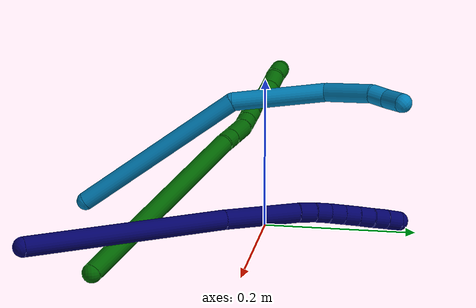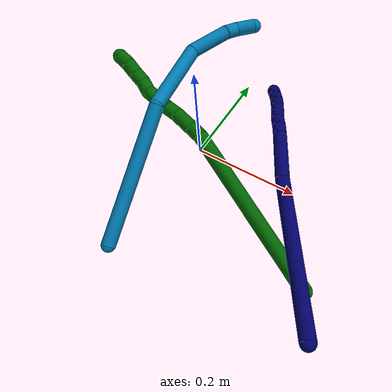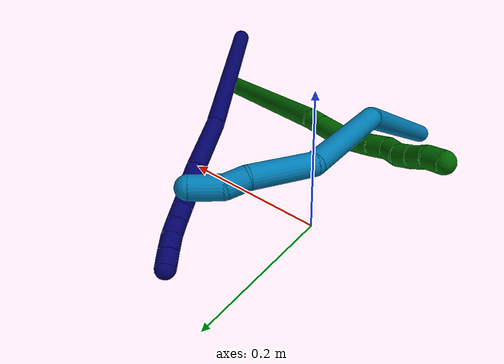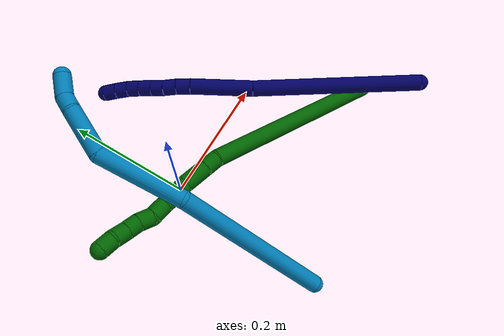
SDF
<sdf version="1.7">
 <world name="default">
  <model name="6">
   <static>0</static>
   <link name="6">
    <collision name="collision-cylinder-e_1_1_4">
     <pose>0.009635 0.116981 -0.088698 -2.21954 0.065535 -0.13179</pose>
     <geometry><cylinder><radius>0.0125</radius><length>0.294242</length></cylinder></geometry>
     <surface>
      <friction><ode><mu>1.16</mu><mu2>1.16</mu2><slip1>0</slip1><slip2>0</slip2></ode></friction>
      <contact><ode><kp>1e+06</kp><kd>1</kd><max_vel>0</max_vel><min_depth>0.001</min_depth></ode></contact>
     </surface>
    </collision>
    <visual name="visual-cylinder-e_1_1_4">
     <pose>0.009635 0.116981 -0.088698 -2.21954 0.065535 -0.13179</pose>
     <geometry><cylinder><radius>0.0125</radius><length>0.294242</length></cylinder></geometry>
     <material><ambient>0 0.392157 0.003922 1</ambient></material>
    </visual>
    <collision name="collision-cylinder-e_2_4_5">
     <pose>0.017474 0.2431 -0.182667 -2.09399 -0.168541 0.29042</pose>
     <geometry><cylinder><radius>0.0125</radius><length>0.021404</length></cylinder></geometry>
     <surface>
      <friction><ode><mu>1.16</mu><mu2>1.16</mu2><slip1>0</slip1><slip2>0</slip2></ode></friction>
      <contact><ode><kp>1e+06</kp><kd>1</kd><max_vel>0</max_vel><min_depth>0.001</min_depth></ode></contact>
     </surface>
    </collision>
    <visual name="visual-cylinder-e_2_4_5">
     <pose>0.017474 0.2431 -0.182667 -2.09399 -0.168541 0.29042</pose>
     <geometry><cylinder><radius>0.0125</radius><length>0.021404</length></cylinder></geometry>
     <material><ambient>0 0.392157 0.003922 1</ambient></material>
    </visual>
    <collision name="collision-cylinder-e_3_5_6">
     <pose>0.012734 0.268133 -0.197019 -2.08987 -0.159535 0.273746</pose>
     <geometry><cylinder><radius>0.0125</radius><length>0.037081</length></cylinder></geometry>
     <surface>
      <friction><ode><mu>1.16</mu><mu2>1.16</mu2><slip1>0</slip1><slip2>0</slip2></ode></friction>
      <contact><ode><kp>1e+06</kp><kd>1</kd><max_vel>0</max_vel><min_depth>0.001</min_depth></ode></contact>
     </surface>
    </collision>
    <visual name="visual-cylinder-e_3_5_6">
     <pose>0.012734 0.268133 -0.197019 -2.08987 -0.159535 0.273746</pose>
     <geometry><cylinder><radius>0.0125</radius><length>0.037081</length></cylinder></geometry>
     <material><ambient>0 0.392157 0.003922 1</ambient></material>
    </visual>
    <collision name="collision-cylinder-e_4_6_7">
     <pose>0.008846 0.294156 -0.209698 -1.91217 -0.087479 0.123837</pose>
     <geometry><cylinder><radius>0.0125</radius><length>0.021582</length></cylinder></geometry>
     <surface>
      <friction><ode><mu>1.16</mu><mu2>1.16</mu2><slip1>0</slip1><slip2>0</slip2></ode></friction>
      <contact><ode><kp>1e+06</kp><kd>1</kd><max_vel>0</max_vel><min_depth>0.001</min_depth></ode></contact>
     </surface>
    </collision>
    <visual name="visual-cylinder-e_4_6_7">
     <pose>0.008846 0.294156 -0.209698 -1.91217 -0.087479 0.123837</pose>
     <geometry><cylinder><radius>0.0125</radius><length>0.021582</length></cylinder></geometry>
     <material><ambient>0 0.392157 0.003922 1</ambient></material>
    </visual>
    <collision name="collision-cylinder-e_5_7_8">
     <pose>0.008059 0.313982 -0.217237 -1.95672 0.01493 -0.02218</pose>
     <geometry><cylinder><radius>0.0125</radius><length>0.020936</length></cylinder></geometry>
     <surface>
      <friction><ode><mu>1.16</mu><mu2>1.16</mu2><slip1>0</slip1><slip2>0</slip2></ode></friction>
      <contact><ode><kp>1e+06</kp><kd>1</kd><max_vel>0</max_vel><min_depth>0.001</min_depth></ode></contact>
     </surface>
    </collision>
    <visual name="visual-cylinder-e_5_7_8">
     <pose>0.008059 0.313982 -0.217237 -1.95672 0.01493 -0.02218</pose>
     <geometry><cylinder><radius>0.0125</radius><length>0.020936</length></cylinder></geometry>
     <material><ambient>0 0.392157 0.003922 1</ambient></material>
    </visual>
    <collision name="collision-cylinder-e_6_8_9">
     <pose>0.00858 0.334295 -0.224894 -1.90764 0.032429 -0.045713</pose>
     <geometry><cylinder><radius>0.0125</radius><length>0.022508</length></cylinder></geometry>
     <surface>
      <friction><ode><mu>1.16</mu><mu2>1.16</mu2><slip1>0</slip1><slip2>0</slip2></ode></friction>
      <contact><ode><kp>1e+06</kp><kd>1</kd><max_vel>0</max_vel><min_depth>0.001</min_depth></ode></contact>
     </surface>
    </collision>
    <visual name="visual-cylinder-e_6_8_9">
     <pose>0.00858 0.334295 -0.224894 -1.90764 0.032429 -0.045713</pose>
     <geometry><cylinder><radius>0.0125</radius><length>0.022508</length></cylinder></geometry>
     <material><ambient>0 0.392157 0.003922 1</ambient></material>
    </visual>
    <collision name="collision-cylinder-e_7_9_10">
     <pose>0.009127 0.352551 -0.235778 -2.32418 0.017359 -0.040076</pose>
     <geometry><cylinder><radius>0.0125</radius><length>0.020953</length></cylinder></geometry>
     <surface>
      <friction><ode><mu>1.16</mu><mu2>1.16</mu2><slip1>0</slip1><slip2>0</slip2></ode></friction>
      <contact><ode><kp>1e+06</kp><kd>1</kd><max_vel>0</max_vel><min_depth>0.001</min_depth></ode></contact>
     </surface>
    </collision>
    <visual name="visual-cylinder-e_7_9_10">
     <pose>0.009127 0.352551 -0.235778 -2.32418 0.017359 -0.040076</pose>
     <geometry><cylinder><radius>0.0125</radius><length>0.020953</length></cylinder></geometry>
     <material><ambient>0 0.392157 0.003922 1</ambient></material>
    </visual>
    <collision name="collision-cylinder-e_8_10_11">
     <pose>0.010856 0.369183 -0.247435 -2.03406 0.152723 -0.246233</pose>
     <geometry><cylinder><radius>0.0125</radius><length>0.020338</length></cylinder></geometry>
     <surface>
      <friction><ode><mu>1.16</mu><mu2>1.16</mu2><slip1>0</slip1><slip2>0</slip2></ode></friction>
      <contact><ode><kp>1e+06</kp><kd>1</kd><max_vel>0</max_vel><min_depth>0.001</min_depth></ode></contact>
     </surface>
    </collision>
    <visual name="visual-cylinder-e_8_10_11">
     <pose>0.010856 0.369183 -0.247435 -2.03406 0.152723 -0.246233</pose>
     <geometry><cylinder><radius>0.0125</radius><length>0.020338</length></cylinder></geometry>
     <material><ambient>0 0.392157 0.003922 1</ambient></material>
    </visual>
    <collision name="collision-cylinder-e_9_11_12">
     <pose>0.015262 0.387085 -0.256384 -2.03461 0.279465 -0.447609</pose>
     <geometry><cylinder><radius>0.0125</radius><length>0.02073</length></cylinder></geometry>
     <surface>
      <friction><ode><mu>1.16</mu><mu2>1.16</mu2><slip1>0</slip1><slip2>0</slip2></ode></friction>
      <contact><ode><kp>1e+06</kp><kd>1</kd><max_vel>0</max_vel><min_depth>0.001</min_depth></ode></contact>
     </surface>
    </collision>
    <visual name="visual-cylinder-e_9_11_12">
     <pose>0.015262 0.387085 -0.256384 -2.03461 0.279465 -0.447609</pose>
     <geometry><cylinder><radius>0.0125</radius><length>0.02073</length></cylinder></geometry>
     <material><ambient>0 0.392157 0.003922 1</ambient></material>
    </visual>
    <collision name="collision-cylinder-e_10_12_2">
     <pose>0.017868 0.405138 -0.265155 -2.01169 -0.025065 0.03954</pose>
     <geometry><cylinder><radius>0.0125</radius><length>0.020226</length></cylinder></geometry>
     <surface>
      <friction><ode><mu>1.16</mu><mu2>1.16</mu2><slip1>0</slip1><slip2>0</slip2></ode></friction>
      <contact><ode><kp>1e+06</kp><kd>1</kd><max_vel>0</max_vel><min_depth>0.001</min_depth></ode></contact>
     </surface>
    </collision>
    <visual name="visual-cylinder-e_10_12_2">
     <pose>0.017868 0.405138 -0.265155 -2.01169 -0.025065 0.03954</pose>
     <geometry><cylinder><radius>0.0125</radius><length>0.020226</length></cylinder></geometry>
     <material><ambient>0 0.392157 0.003922 1</ambient></material>
    </visual>
    <collision name="collision-sphere-2">
     <pose>0.017614 0.414282 -0.26947 0 -0 0</pose>
     <geometry><sphere><radius>0.0125</radius></sphere></geometry>
     <surface>
      <friction><ode><mu>1.16</mu><mu2>1.16</mu2><slip1>0</slip1><slip2>0</slip2></ode></friction>
      <contact><ode><kp>1e+06</kp><kd>1</kd><max_vel>0</max_vel><min_depth>0.001</min_depth></ode></contact>
     </surface>
    </collision>
    <visual name="visual-sphere-2">
     <pose>0.017614 0.414282 -0.26947 0 -0 0</pose>
     <geometry><sphere><radius>0.0125</radius></sphere></geometry>
     <material><ambient>0 0.392157 0.003922 1</ambient></material>
    </visual>
    <collision name="collision-sphere-12">
     <pose>0.018121 0.395995 -0.260841 0 -0 0</pose>
     <geometry><sphere><radius>0.0125</radius></sphere></geometry>
     <surface>
      <friction><ode><mu>1.16</mu><mu2>1.16</mu2><slip1>0</slip1><slip2>0</slip2></ode></friction>
      <contact><ode><kp>1e+06</kp><kd>1</kd><max_vel>0</max_vel><min_depth>0.001</min_depth></ode></contact>
     </surface>
    </collision>
    <visual name="visual-sphere-12">
     <pose>0.018121 0.395995 -0.260841 0 -0 0</pose>
     <geometry><sphere><radius>0.0125</radius></sphere></geometry>
     <material><ambient>0 0.392157 0.003922 1</ambient></material>
    </visual>
    <collision name="collision-sphere-11">
     <pose>0.012403 0.378174 -0.251927 0 -0 0</pose>
     <geometry><sphere><radius>0.0125</radius></sphere></geometry>
     <surface>
      <friction><ode><mu>1.16</mu><mu2>1.16</mu2><slip1>0</slip1><slip2>0</slip2></ode></friction>
      <contact><ode><kp>1e+06</kp><kd>1</kd><max_vel>0</max_vel><min_depth>0.001</min_depth></ode></contact>
     </surface>
    </collision>
    <visual name="visual-sphere-11">
     <pose>0.012403 0.378174 -0.251927 0 -0 0</pose>
     <geometry><sphere><radius>0.0125</radius></sphere></geometry>
     <material><ambient>0 0.392157 0.003922 1</ambient></material>
    </visual>
    <collision name="collision-sphere-10">
     <pose>0.009309 0.360191 -0.242944 0 -0 0</pose>
     <geometry><sphere><radius>0.0125</radius></sphere></geometry>
     <surface>
      <friction><ode><mu>1.16</mu><mu2>1.16</mu2><slip1>0</slip1><slip2>0</slip2></ode></friction>
      <contact><ode><kp>1e+06</kp><kd>1</kd><max_vel>0</max_vel><min_depth>0.001</min_depth></ode></contact>
     </surface>
    </collision>
    <visual name="visual-sphere-10">
     <pose>0.009309 0.360191 -0.242944 0 -0 0</pose>
     <geometry><sphere><radius>0.0125</radius></sphere></geometry>
     <material><ambient>0 0.392157 0.003922 1</ambient></material>
    </visual>
    <collision name="collision-sphere-9">
     <pose>0.008945 0.344911 -0.228612 0 -0 0</pose>
     <geometry><sphere><radius>0.0125</radius></sphere></geometry>
     <surface>
      <friction><ode><mu>1.16</mu><mu2>1.16</mu2><slip1>0</slip1><slip2>0</slip2></ode></friction>
      <contact><ode><kp>1e+06</kp><kd>1</kd><max_vel>0</max_vel><min_depth>0.001</min_depth></ode></contact>
     </surface>
    </collision>
    <visual name="visual-sphere-9">
     <pose>0.008945 0.344911 -0.228612 0 -0 0</pose>
     <geometry><sphere><radius>0.0125</radius></sphere></geometry>
     <material><ambient>0 0.392157 0.003922 1</ambient></material>
    </visual>
    <collision name="collision-sphere-4">
     <pose>0.019269 0.233961 -0.177396 0 -0 0</pose>
     <geometry><sphere><radius>0.0125</radius></sphere></geometry>
     <surface>
      <friction><ode><mu>1.16</mu><mu2>1.16</mu2><slip1>0</slip1><slip2>0</slip2></ode></friction>
      <contact><ode><kp>1e+06</kp><kd>1</kd><max_vel>0</max_vel><min_depth>0.001</min_depth></ode></contact>
     </surface>
    </collision>
    <visual name="visual-sphere-4">
     <pose>0.019269 0.233961 -0.177396 0 -0 0</pose>
     <geometry><sphere><radius>0.0125</radius></sphere></geometry>
     <material><ambient>0 0.392157 0.003922 1</ambient></material>
    </visual>
    <collision name="collision-sphere-1">
     <geometry><sphere><radius>0.0125</radius></sphere></geometry>
     <surface>
      <friction><ode><mu>1.16</mu><mu2>1.16</mu2><slip1>0</slip1><slip2>0</slip2></ode></friction>
      <contact><ode><kp>1e+06</kp><kd>1</kd><max_vel>0</max_vel><min_depth>0.001</min_depth></ode></contact>
     </surface>
    </collision>
    <visual name="visual-sphere-1">
     <geometry><sphere><radius>0.0125</radius></sphere></geometry>
     <material><ambient>0 0.392157 0.003922 1</ambient></material>
    </visual>
    <collision name="collision-sphere-8">
     <pose>0.008215 0.323679 -0.221177 0 -0 0</pose>
     <geometry><sphere><radius>0.0125</radius></sphere></geometry>
     <surface>
      <friction><ode><mu>1.16</mu><mu2>1.16</mu2><slip1>0</slip1><slip2>0</slip2></ode></friction>
      <contact><ode><kp>1e+06</kp><kd>1</kd><max_vel>0</max_vel><min_depth>0.001</min_depth></ode></contact>
     </surface>
    </collision>
    <visual name="visual-sphere-8">
     <pose>0.008215 0.323679 -0.221177 0 -0 0</pose>
     <geometry><sphere><radius>0.0125</radius></sphere></geometry>
     <material><ambient>0 0.392157 0.003922 1</ambient></material>
    </visual>
    <collision name="collision-sphere-5">
     <pose>0.015679 0.252239 -0.187938 0 -0 0</pose>
     <geometry><sphere><radius>0.0125</radius></sphere></geometry>
     <surface>
      <friction><ode><mu>1.16</mu><mu2>1.16</mu2><slip1>0</slip1><slip2>0</slip2></ode></friction>
      <contact><ode><kp>1e+06</kp><kd>1</kd><max_vel>0</max_vel><min_depth>0.001</min_depth></ode></contact>
     </surface>
    </collision>
    <visual name="visual-sphere-5">
     <pose>0.015679 0.252239 -0.187938 0 -0 0</pose>
     <geometry><sphere><radius>0.0125</radius></sphere></geometry>
     <material><ambient>0 0.392157 0.003922 1</ambient></material>
    </visual>
    <collision name="collision-sphere-6">
     <pose>0.009788 0.284027 -0.2061 0 -0 0</pose>
     <geometry><sphere><radius>0.0125</radius></sphere></geometry>
     <surface>
      <friction><ode><mu>1.16</mu><mu2>1.16</mu2><slip1>0</slip1><slip2>0</slip2></ode></friction>
      <contact><ode><kp>1e+06</kp><kd>1</kd><max_vel>0</max_vel><min_depth>0.001</min_depth></ode></contact>
     </surface>
    </collision>
    <visual name="visual-sphere-6">
     <pose>0.009788 0.284027 -0.2061 0 -0 0</pose>
     <geometry><sphere><radius>0.0125</radius></sphere></geometry>
     <material><ambient>0 0.392157 0.003922 1</ambient></material>
    </visual>
    <collision name="collision-sphere-7">
     <pose>0.007903 0.304285 -0.213297 0 -0 0</pose>
     <geometry><sphere><radius>0.0125</radius></sphere></geometry>
     <surface>
      <friction><ode><mu>1.16</mu><mu2>1.16</mu2><slip1>0</slip1><slip2>0</slip2></ode></friction>
      <contact><ode><kp>1e+06</kp><kd>1</kd><max_vel>0</max_vel><min_depth>0.001</min_depth></ode></contact>
     </surface>
    </collision>
    <visual name="visual-sphere-7">
     <pose>0.007903 0.304285 -0.213297 0 -0 0</pose>
     <geometry><sphere><radius>0.0125</radius></sphere></geometry>
     <material><ambient>0 0.392157 0.003922 1</ambient></material>
    </visual>
    <inertial>
     <pose>0.010647 0.202254 -0.144201 0 -0 0</pose>
     <mass>0.5</mass>
     <inertia>
      <ixx>0.001852</ixx>
      <ixy>0</ixy>
      <ixz>0</ixz>
      <iyy>-0.001518</iyy>
      <iyz>0</iyz>
      <izz>-0.001874</izz>
     </inertia>
    </inertial>
   </link>
   <pose>0.291732 -0.166004 0.030721 1.78245 -1.2927 0.028865</pose>
  </model>
  <model name="7">
   <static>0</static>
   <link name="7">
    <collision name="collision-cylinder-e_1_1_4">
     <pose>0.035532 0.057924 -0.111082 -2.66093 0.276365 -1.03232</pose>
     <geometry><cylinder><radius>0.0125</radius><length>0.260438</length></cylinder></geometry>
     <surface>
      <friction><ode><mu>1.16</mu><mu2>1.16</mu2><slip1>0</slip1><slip2>0</slip2></ode></friction>
      <contact><ode><kp>1e+06</kp><kd>1</kd><max_vel>0</max_vel><min_depth>0.001</min_depth></ode></contact>
     </surface>
    </collision>
    <visual name="visual-cylinder-e_1_1_4">
     <pose>0.035532 0.057924 -0.111082 -2.66093 0.276365 -1.03232</pose>
     <geometry><cylinder><radius>0.0125</radius><length>0.260438</length></cylinder></geometry>
     <material><ambient>0.003922 0 0.403922 1</ambient></material>
    </visual>
    <collision name="collision-cylinder-e_2_4_5">
     <pose>0.085035 0.140861 -0.261439 -2.57449 0.291508 -0.933291</pose>
     <geometry><cylinder><radius>0.0125</radius><length>0.097228</length></cylinder></geometry>
     <surface>
      <friction><ode><mu>1.16</mu><mu2>1.16</mu2><slip1>0</slip1><slip2>0</slip2></ode></friction>
      <contact><ode><kp>1e+06</kp><kd>1</kd><max_vel>0</max_vel><min_depth>0.001</min_depth></ode></contact>
     </surface>
    </collision>
    <visual name="visual-cylinder-e_2_4_5">
     <pose>0.085035 0.140861 -0.261439 -2.57449 0.291508 -0.933291</pose>
     <geometry><cylinder><radius>0.0125</radius><length>0.097228</length></cylinder></geometry>
     <material><ambient>0.003922 0 0.403922 1</ambient></material>
    </visual>
    <collision name="collision-cylinder-e_3_5_6">
     <pose>0.10299 0.17121 -0.309536 -2.59771 0.368665 -1.17873</pose>
     <geometry><cylinder><radius>0.0125</radius><length>0.022107</length></cylinder></geometry>
     <surface>
      <friction><ode><mu>1.16</mu><mu2>1.16</mu2><slip1>0</slip1><slip2>0</slip2></ode></friction>
      <contact><ode><kp>1e+06</kp><kd>1</kd><max_vel>0</max_vel><min_depth>0.001</min_depth></ode></contact>
     </surface>
    </collision>
    <visual name="visual-cylinder-e_3_5_6">
     <pose>0.10299 0.17121 -0.309536 -2.59771 0.368665 -1.17873</pose>
     <geometry><cylinder><radius>0.0125</radius><length>0.022107</length></cylinder></geometry>
     <material><ambient>0.003922 0 0.403922 1</ambient></material>
    </visual>
    <collision name="collision-cylinder-e_4_6_7">
     <pose>0.111414 0.180784 -0.326383 -2.65553 0.455113 -1.50257</pose>
     <geometry><cylinder><radius>0.0125</radius><length>0.020206</length></cylinder></geometry>
     <surface>
      <friction><ode><mu>1.16</mu><mu2>1.16</mu2><slip1>0</slip1><slip2>0</slip2></ode></friction>
      <contact><ode><kp>1e+06</kp><kd>1</kd><max_vel>0</max_vel><min_depth>0.001</min_depth></ode></contact>
     </surface>
    </collision>
    <visual name="visual-cylinder-e_4_6_7">
     <pose>0.111414 0.180784 -0.326383 -2.65553 0.455113 -1.50257</pose>
     <geometry><cylinder><radius>0.0125</radius><length>0.020206</length></cylinder></geometry>
     <material><ambient>0.003922 0 0.403922 1</ambient></material>
    </visual>
    <collision name="collision-cylinder-e_5_7_8">
     <pose>0.120416 0.190037 -0.341772 -2.54398 0.473154 -1.3282</pose>
     <geometry><cylinder><radius>0.0125</radius><length>0.020019</length></cylinder></geometry>
     <surface>
      <friction><ode><mu>1.16</mu><mu2>1.16</mu2><slip1>0</slip1><slip2>0</slip2></ode></friction>
      <contact><ode><kp>1e+06</kp><kd>1</kd><max_vel>0</max_vel><min_depth>0.001</min_depth></ode></contact>
     </surface>
    </collision>
    <visual name="visual-cylinder-e_5_7_8">
     <pose>0.120416 0.190037 -0.341772 -2.54398 0.473154 -1.3282</pose>
     <geometry><cylinder><radius>0.0125</radius><length>0.020019</length></cylinder></geometry>
     <material><ambient>0.003922 0 0.403922 1</ambient></material>
    </visual>
    <collision name="collision-cylinder-e_6_8_9">
     <pose>0.129535 0.200047 -0.356504 -2.54557 0.473232 -1.33111</pose>
     <geometry><cylinder><radius>0.0125</radius><length>0.020001</length></cylinder></geometry>
     <surface>
      <friction><ode><mu>1.16</mu><mu2>1.16</mu2><slip1>0</slip1><slip2>0</slip2></ode></friction>
      <contact><ode><kp>1e+06</kp><kd>1</kd><max_vel>0</max_vel><min_depth>0.001</min_depth></ode></contact>
     </surface>
    </collision>
    <visual name="visual-cylinder-e_6_8_9">
     <pose>0.129535 0.200047 -0.356504 -2.54557 0.473232 -1.33111</pose>
     <geometry><cylinder><radius>0.0125</radius><length>0.020001</length></cylinder></geometry>
     <material><ambient>0.003922 0 0.403922 1</ambient></material>
    </visual>
    <collision name="collision-cylinder-e_7_9_10">
     <pose>0.138869 0.20979 -0.371265 -2.57094 0.497878 -1.42815</pose>
     <geometry><cylinder><radius>0.0125</radius><length>0.02</length></cylinder></geometry>
     <surface>
      <friction><ode><mu>1.16</mu><mu2>1.16</mu2><slip1>0</slip1><slip2>0</slip2></ode></friction>
      <contact><ode><kp>1e+06</kp><kd>1</kd><max_vel>0</max_vel><min_depth>0.001</min_depth></ode></contact>
     </surface>
    </collision>
    <visual name="visual-cylinder-e_7_9_10">
     <pose>0.138869 0.20979 -0.371265 -2.57094 0.497878 -1.42815</pose>
     <geometry><cylinder><radius>0.0125</radius><length>0.02</length></cylinder></geometry>
     <material><ambient>0.003922 0 0.403922 1</ambient></material>
    </visual>
    <collision name="collision-cylinder-e_8_10_11">
     <pose>0.148399 0.218308 -0.386608 -2.69858 0.495417 -1.68654</pose>
     <geometry><cylinder><radius>0.0125</radius><length>0.02</length></cylinder></geometry>
     <surface>
      <friction><ode><mu>1.16</mu><mu2>1.16</mu2><slip1>0</slip1><slip2>0</slip2></ode></friction>
      <contact><ode><kp>1e+06</kp><kd>1</kd><max_vel>0</max_vel><min_depth>0.001</min_depth></ode></contact>
     </surface>
    </collision>
    <visual name="visual-cylinder-e_8_10_11">
     <pose>0.148399 0.218308 -0.386608 -2.69858 0.495417 -1.68654</pose>
     <geometry><cylinder><radius>0.0125</radius><length>0.02</length></cylinder></geometry>
     <material><ambient>0.003922 0 0.403922 1</ambient></material>
    </visual>
    <collision name="collision-cylinder-e_9_11_2">
     <pose>0.158305 0.225528 -0.402402 -2.72745 0.541231 -1.84532</pose>
     <geometry><cylinder><radius>0.0125</radius><length>0.02</length></cylinder></geometry>
     <surface>
      <friction><ode><mu>1.16</mu><mu2>1.16</mu2><slip1>0</slip1><slip2>0</slip2></ode></friction>
      <contact><ode><kp>1e+06</kp><kd>1</kd><max_vel>0</max_vel><min_depth>0.001</min_depth></ode></contact>
     </surface>
    </collision>
    <visual name="visual-cylinder-e_9_11_2">
     <pose>0.158305 0.225528 -0.402402 -2.72745 0.541231 -1.84532</pose>
     <geometry><cylinder><radius>0.0125</radius><length>0.02</length></cylinder></geometry>
     <material><ambient>0.003922 0 0.403922 1</ambient></material>
    </visual>
    <collision name="collision-sphere-2">
     <pose>0.163457 0.228977 -0.410248 0 -0 0</pose>
     <geometry><sphere><radius>0.0125</radius></sphere></geometry>
     <surface>
      <friction><ode><mu>1.16</mu><mu2>1.16</mu2><slip1>0</slip1><slip2>0</slip2></ode></friction>
      <contact><ode><kp>1e+06</kp><kd>1</kd><max_vel>0</max_vel><min_depth>0.001</min_depth></ode></contact>
     </surface>
    </collision>
    <visual name="visual-sphere-2">
     <pose>0.163457 0.228977 -0.410248 0 -0 0</pose>
     <geometry><sphere><radius>0.0125</radius></sphere></geometry>
     <material><ambient>0.003922 0 0.403922 1</ambient></material>
    </visual>
    <collision name="collision-sphere-11">
     <pose>0.153153 0.222079 -0.394556 0 -0 0</pose>
     <geometry><sphere><radius>0.0125</radius></sphere></geometry>
     <surface>
      <friction><ode><mu>1.16</mu><mu2>1.16</mu2><slip1>0</slip1><slip2>0</slip2></ode></friction>
      <contact><ode><kp>1e+06</kp><kd>1</kd><max_vel>0</max_vel><min_depth>0.001</min_depth></ode></contact>
     </surface>
    </collision>
    <visual name="visual-sphere-11">
     <pose>0.153153 0.222079 -0.394556 0 -0 0</pose>
     <geometry><sphere><radius>0.0125</radius></sphere></geometry>
     <material><ambient>0.003922 0 0.403922 1</ambient></material>
    </visual>
    <collision name="collision-sphere-10">
     <pose>0.143645 0.214536 -0.378659 0 -0 0</pose>
     <geometry><sphere><radius>0.0125</radius></sphere></geometry>
     <surface>
      <friction><ode><mu>1.16</mu><mu2>1.16</mu2><slip1>0</slip1><slip2>0</slip2></ode></friction>
      <contact><ode><kp>1e+06</kp><kd>1</kd><max_vel>0</max_vel><min_depth>0.001</min_depth></ode></contact>
     </surface>
    </collision>
    <visual name="visual-sphere-10">
     <pose>0.143645 0.214536 -0.378659 0 -0 0</pose>
     <geometry><sphere><radius>0.0125</radius></sphere></geometry>
     <material><ambient>0.003922 0 0.403922 1</ambient></material>
    </visual>
    <collision name="collision-sphere-9">
     <pose>0.134093 0.205044 -0.363871 0 -0 0</pose>
     <geometry><sphere><radius>0.0125</radius></sphere></geometry>
     <surface>
      <friction><ode><mu>1.16</mu><mu2>1.16</mu2><slip1>0</slip1><slip2>0</slip2></ode></friction>
      <contact><ode><kp>1e+06</kp><kd>1</kd><max_vel>0</max_vel><min_depth>0.001</min_depth></ode></contact>
     </surface>
    </collision>
    <visual name="visual-sphere-9">
     <pose>0.134093 0.205044 -0.363871 0 -0 0</pose>
     <geometry><sphere><radius>0.0125</radius></sphere></geometry>
     <material><ambient>0.003922 0 0.403922 1</ambient></material>
    </visual>
    <collision name="collision-sphere-4">
     <pose>0.071063 0.115848 -0.222164 0 -0 0</pose>
     <geometry><sphere><radius>0.0125</radius></sphere></geometry>
     <surface>
      <friction><ode><mu>1.16</mu><mu2>1.16</mu2><slip1>0</slip1><slip2>0</slip2></ode></friction>
      <contact><ode><kp>1e+06</kp><kd>1</kd><max_vel>0</max_vel><min_depth>0.001</min_depth></ode></contact>
     </surface>
    </collision>
    <visual name="visual-sphere-4">
     <pose>0.071063 0.115848 -0.222164 0 -0 0</pose>
     <geometry><sphere><radius>0.0125</radius></sphere></geometry>
     <material><ambient>0.003922 0 0.403922 1</ambient></material>
    </visual>
    <collision name="collision-sphere-1">
     <geometry><sphere><radius>0.0125</radius></sphere></geometry>
     <surface>
      <friction><ode><mu>1.16</mu><mu2>1.16</mu2><slip1>0</slip1><slip2>0</slip2></ode></friction>
      <contact><ode><kp>1e+06</kp><kd>1</kd><max_vel>0</max_vel><min_depth>0.001</min_depth></ode></contact>
     </surface>
    </collision>
    <visual name="visual-sphere-1">
     <geometry><sphere><radius>0.0125</radius></sphere></geometry>
     <material><ambient>0.003922 0 0.403922 1</ambient></material>
    </visual>
    <collision name="collision-sphere-8">
     <pose>0.124977 0.19505 -0.349138 0 -0 0</pose>
     <geometry><sphere><radius>0.0125</radius></sphere></geometry>
     <surface>
      <friction><ode><mu>1.16</mu><mu2>1.16</mu2><slip1>0</slip1><slip2>0</slip2></ode></friction>
      <contact><ode><kp>1e+06</kp><kd>1</kd><max_vel>0</max_vel><min_depth>0.001</min_depth></ode></contact>
     </surface>
    </collision>
    <visual name="visual-sphere-8">
     <pose>0.124977 0.19505 -0.349138 0 -0 0</pose>
     <geometry><sphere><radius>0.0125</radius></sphere></geometry>
     <material><ambient>0.003922 0 0.403922 1</ambient></material>
    </visual>
    <collision name="collision-sphere-5">
     <pose>0.099006 0.165874 -0.300713 0 -0 0</pose>
     <geometry><sphere><radius>0.0125</radius></sphere></geometry>
     <surface>
      <friction><ode><mu>1.16</mu><mu2>1.16</mu2><slip1>0</slip1><slip2>0</slip2></ode></friction>
      <contact><ode><kp>1e+06</kp><kd>1</kd><max_vel>0</max_vel><min_depth>0.001</min_depth></ode></contact>
     </surface>
    </collision>
    <visual name="visual-sphere-5">
     <pose>0.099006 0.165874 -0.300713 0 -0 0</pose>
     <geometry><sphere><radius>0.0125</radius></sphere></geometry>
     <material><ambient>0.003922 0 0.403922 1</ambient></material>
    </visual>
    <collision name="collision-sphere-6">
     <pose>0.106973 0.176545 -0.318359 0 -0 0</pose>
     <geometry><sphere><radius>0.0125</radius></sphere></geometry>
     <surface>
      <friction><ode><mu>1.16</mu><mu2>1.16</mu2><slip1>0</slip1><slip2>0</slip2></ode></friction>
      <contact><ode><kp>1e+06</kp><kd>1</kd><max_vel>0</max_vel><min_depth>0.001</min_depth></ode></contact>
     </surface>
    </collision>
    <visual name="visual-sphere-6">
     <pose>0.106973 0.176545 -0.318359 0 -0 0</pose>
     <geometry><sphere><radius>0.0125</radius></sphere></geometry>
     <material><ambient>0.003922 0 0.403922 1</ambient></material>
    </visual>
    <collision name="collision-sphere-7">
     <pose>0.115855 0.185024 -0.334406 0 -0 0</pose>
     <geometry><sphere><radius>0.0125</radius></sphere></geometry>
     <surface>
      <friction><ode><mu>1.16</mu><mu2>1.16</mu2><slip1>0</slip1><slip2>0</slip2></ode></friction>
      <contact><ode><kp>1e+06</kp><kd>1</kd><max_vel>0</max_vel><min_depth>0.001</min_depth></ode></contact>
     </surface>
    </collision>
    <visual name="visual-sphere-7">
     <pose>0.115855 0.185024 -0.334406 0 -0 0</pose>
     <geometry><sphere><radius>0.0125</radius></sphere></geometry>
     <material><ambient>0.003922 0 0.403922 1</ambient></material>
    </visual>
    <inertial>
     <pose>0.071925 0.114195 -0.209931 0 -0 0</pose>
     <mass>0.5</mass>
     <inertia>
      <ixx>-0.000504</ixx>
      <ixy>0</ixy>
      <ixz>0</ixz>
      <iyy>-0.00182</iyy>
      <iyz>0</iyz>
      <izz>-0.00117</izz>
     </inertia>
    </inertial>
   </link>
   <pose>0.324053 -0.241469 0.07098 2.34146 1.29083 1.84183</pose>
  </model>
  <model name="9">
   <static>0</static>
   <link name="9">
    <collision name="collision-cylinder-e_1_1_4">
     <pose>0.019587 0.061483 0.105045 -0.529541 0.159557 -0.043347</pose>
     <geometry><cylinder><radius>0.0125</radius><length>0.246562</length></cylinder></geometry>
     <surface>
      <friction><ode><mu>1.16</mu><mu2>1.16</mu2><slip1>0</slip1><slip2>0</slip2></ode></friction>
      <contact><ode><kp>1e+06</kp><kd>1</kd><max_vel>0</max_vel><min_depth>0.001</min_depth></ode></contact>
     </surface>
    </collision>
    <visual name="visual-cylinder-e_1_1_4">
     <pose>0.019587 0.061483 0.105045 -0.529541 0.159557 -0.043347</pose>
     <geometry><cylinder><radius>0.0125</radius><length>0.246562</length></cylinder></geometry>
     <material><ambient>0 0.490196 0.709804 1</ambient></material>
    </visual>
    <collision name="collision-cylinder-e_2_4_5">
     <pose>0.021532 0.164155 0.25428 -0.750267 -0.284135 0.112527</pose>
     <geometry><cylinder><radius>0.0125</radius><length>0.125868</length></cylinder></geometry>
     <surface>
      <friction><ode><mu>1.16</mu><mu2>1.16</mu2><slip1>0</slip1><slip2>0</slip2></ode></friction>
      <contact><ode><kp>1e+06</kp><kd>1</kd><max_vel>0</max_vel><min_depth>0.001</min_depth></ode></contact>
     </surface>
    </collision>
    <visual name="visual-cylinder-e_2_4_5">
     <pose>0.021532 0.164155 0.25428 -0.750267 -0.284135 0.112527</pose>
     <geometry><cylinder><radius>0.0125</radius><length>0.125868</length></cylinder></geometry>
     <material><ambient>0 0.490196 0.709804 1</ambient></material>
    </visual>
    <collision name="collision-cylinder-e_3_5_6">
     <pose>0.002828 0.238763 0.310892 -1.21493 -0.029757 0.020686</pose>
     <geometry><cylinder><radius>0.0125</radius><length>0.071333</length></cylinder></geometry>
     <surface>
      <friction><ode><mu>1.16</mu><mu2>1.16</mu2><slip1>0</slip1><slip2>0</slip2></ode></friction>
      <contact><ode><kp>1e+06</kp><kd>1</kd><max_vel>0</max_vel><min_depth>0.001</min_depth></ode></contact>
     </surface>
    </collision>
    <visual name="visual-cylinder-e_3_5_6">
     <pose>0.002828 0.238763 0.310892 -1.21493 -0.029757 0.020686</pose>
     <geometry><cylinder><radius>0.0125</radius><length>0.071333</length></cylinder></geometry>
     <material><ambient>0 0.490196 0.709804 1</ambient></material>
    </visual>
    <collision name="collision-cylinder-e_4_6_7">
     <pose>-0.000967 0.283361 0.32555 -1.37336 -0.235315 0.193197</pose>
     <geometry><cylinder><radius>0.0125</radius><length>0.023453</length></cylinder></geometry>
     <surface>
      <friction><ode><mu>1.16</mu><mu2>1.16</mu2><slip1>0</slip1><slip2>0</slip2></ode></friction>
      <contact><ode><kp>1e+06</kp><kd>1</kd><max_vel>0</max_vel><min_depth>0.001</min_depth></ode></contact>
     </surface>
    </collision>
    <visual name="visual-cylinder-e_4_6_7">
     <pose>-0.000967 0.283361 0.32555 -1.37336 -0.235315 0.193197</pose>
     <geometry><cylinder><radius>0.0125</radius><length>0.023453</length></cylinder></geometry>
     <material><ambient>0 0.490196 0.709804 1</ambient></material>
    </visual>
    <collision name="collision-cylinder-e_5_7_2">
     <pose>-0.001697 0.310812 0.327844 -1.56726 0.122561 -0.122129</pose>
     <geometry><cylinder><radius>0.0125</radius><length>0.032784</length></cylinder></geometry>
     <surface>
      <friction><ode><mu>1.16</mu><mu2>1.16</mu2><slip1>0</slip1><slip2>0</slip2></ode></friction>
      <contact><ode><kp>1e+06</kp><kd>1</kd><max_vel>0</max_vel><min_depth>0.001</min_depth></ode></contact>
     </surface>
    </collision>
    <visual name="visual-cylinder-e_5_7_2">
     <pose>-0.001697 0.310812 0.327844 -1.56726 0.122561 -0.122129</pose>
     <geometry><cylinder><radius>0.0125</radius><length>0.032784</length></cylinder></geometry>
     <material><ambient>0 0.490196 0.709804 1</ambient></material>
    </visual>
    <collision name="collision-sphere-2">
     <pose>0.000307 0.327081 0.327902 0 -0 0</pose>
     <geometry><sphere><radius>0.0125</radius></sphere></geometry>
     <surface>
      <friction><ode><mu>1.16</mu><mu2>1.16</mu2><slip1>0</slip1><slip2>0</slip2></ode></friction>
      <contact><ode><kp>1e+06</kp><kd>1</kd><max_vel>0</max_vel><min_depth>0.001</min_depth></ode></contact>
     </surface>
    </collision>
    <visual name="visual-sphere-2">
     <pose>0.000307 0.327081 0.327902 0 -0 0</pose>
     <geometry><sphere><radius>0.0125</radius></sphere></geometry>
     <material><ambient>0 0.490196 0.709804 1</ambient></material>
    </visual>
    <collision name="collision-sphere-7">
     <pose>-0.003701 0.294543 0.327787 0 -0 0</pose>
     <geometry><sphere><radius>0.0125</radius></sphere></geometry>
     <surface>
      <friction><ode><mu>1.16</mu><mu2>1.16</mu2><slip1>0</slip1><slip2>0</slip2></ode></friction>
      <contact><ode><kp>1e+06</kp><kd>1</kd><max_vel>0</max_vel><min_depth>0.001</min_depth></ode></contact>
     </surface>
    </collision>
    <visual name="visual-sphere-7">
     <pose>-0.003701 0.294543 0.327787 0 -0 0</pose>
     <geometry><sphere><radius>0.0125</radius></sphere></geometry>
     <material><ambient>0 0.490196 0.709804 1</ambient></material>
    </visual>
    <collision name="collision-sphere-6">
     <pose>0.001767 0.27218 0.323313 0 -0 0</pose>
     <geometry><sphere><radius>0.0125</radius></sphere></geometry>
     <surface>
      <friction><ode><mu>1.16</mu><mu2>1.16</mu2><slip1>0</slip1><slip2>0</slip2></ode></friction>
      <contact><ode><kp>1e+06</kp><kd>1</kd><max_vel>0</max_vel><min_depth>0.001</min_depth></ode></contact>
     </surface>
    </collision>
    <visual name="visual-sphere-6">
     <pose>0.001767 0.27218 0.323313 0 -0 0</pose>
     <geometry><sphere><radius>0.0125</radius></sphere></geometry>
     <material><ambient>0 0.490196 0.709804 1</ambient></material>
    </visual>
    <collision name="collision-sphere-5">
     <pose>0.00389 0.205346 0.298471 0 -0 0</pose>
     <geometry><sphere><radius>0.0125</radius></sphere></geometry>
     <surface>
      <friction><ode><mu>1.16</mu><mu2>1.16</mu2><slip1>0</slip1><slip2>0</slip2></ode></friction>
      <contact><ode><kp>1e+06</kp><kd>1</kd><max_vel>0</max_vel><min_depth>0.001</min_depth></ode></contact>
     </surface>
    </collision>
    <visual name="visual-sphere-5">
     <pose>0.00389 0.205346 0.298471 0 -0 0</pose>
     <geometry><sphere><radius>0.0125</radius></sphere></geometry>
     <material><ambient>0 0.490196 0.709804 1</ambient></material>
    </visual>
    <collision name="collision-sphere-1">
     <geometry><sphere><radius>0.0125</radius></sphere></geometry>
     <surface>
      <friction><ode><mu>1.16</mu><mu2>1.16</mu2><slip1>0</slip1><slip2>0</slip2></ode></friction>
      <contact><ode><kp>1e+06</kp><kd>1</kd><max_vel>0</max_vel><min_depth>0.001</min_depth></ode></contact>
     </surface>
    </collision>
    <visual name="visual-sphere-1">
     <geometry><sphere><radius>0.0125</radius></sphere></geometry>
     <material><ambient>0 0.490196 0.709804 1</ambient></material>
    </visual>
    <collision name="collision-sphere-4">
     <pose>0.039174 0.122965 0.210089 0 -0 0</pose>
     <geometry><sphere><radius>0.0125</radius></sphere></geometry>
     <surface>
      <friction><ode><mu>1.16</mu><mu2>1.16</mu2><slip1>0</slip1><slip2>0</slip2></ode></friction>
      <contact><ode><kp>1e+06</kp><kd>1</kd><max_vel>0</max_vel><min_depth>0.001</min_depth></ode></contact>
     </surface>
    </collision>
    <visual name="visual-sphere-4">
     <pose>0.039174 0.122965 0.210089 0 -0 0</pose>
     <geometry><sphere><radius>0.0125</radius></sphere></geometry>
     <material><ambient>0 0.490196 0.709804 1</ambient></material>
    </visual>
    <inertial>
     <pose>0.015326 0.139377 0.196932 0 -0 0</pose>
     <mass>0.5</mass>
     <inertia>
      <ixx>0.001409</ixx>
      <ixy>0</ixy>
      <ixz>0</ixz>
      <iyy>0.00122</iyy>
      <iyz>0</iyz>
      <izz>-0.000902</izz>
     </inertia>
    </inertial>
   </link>
   <pose>-0.022174 -0.249905 0.012627 -0.076908 -0.982346 -0.70315</pose>
  </model>
 </world>
</sdf>
